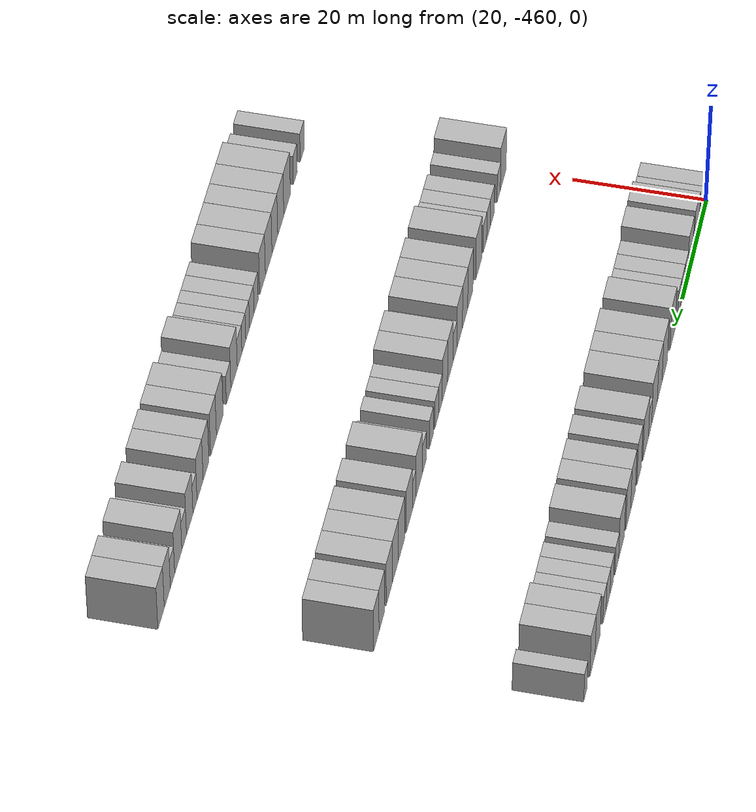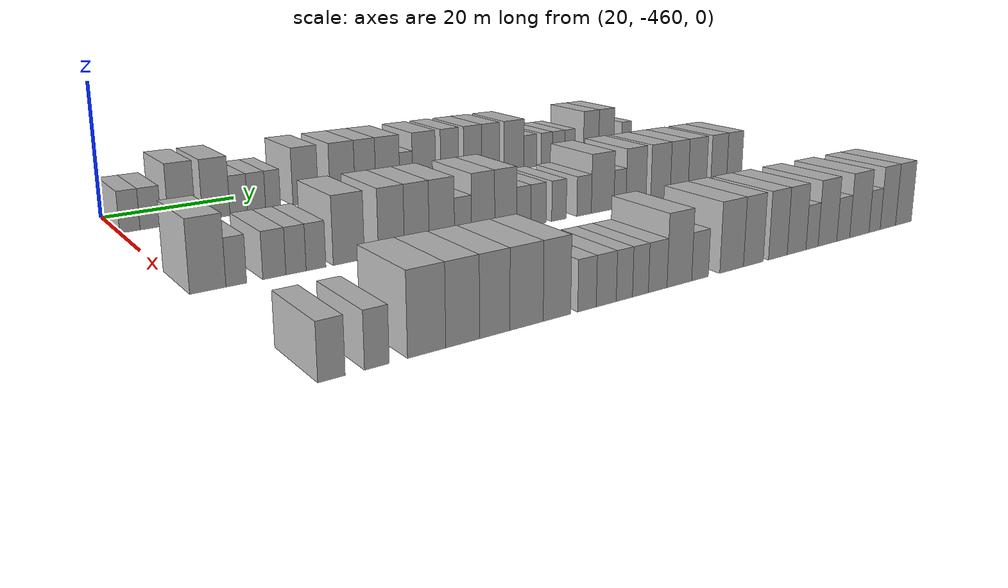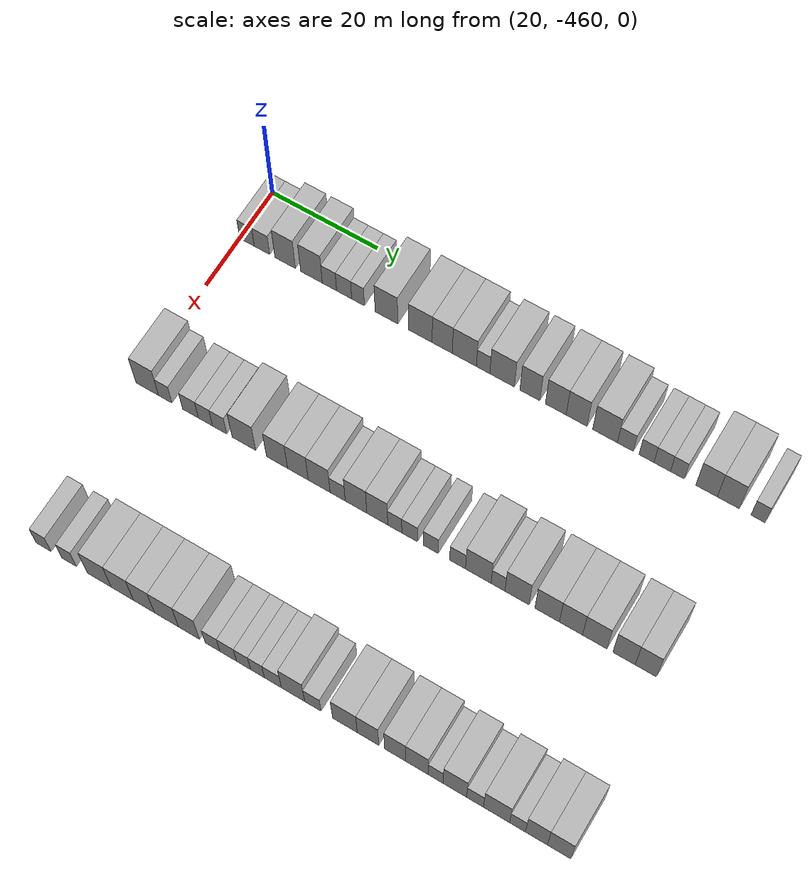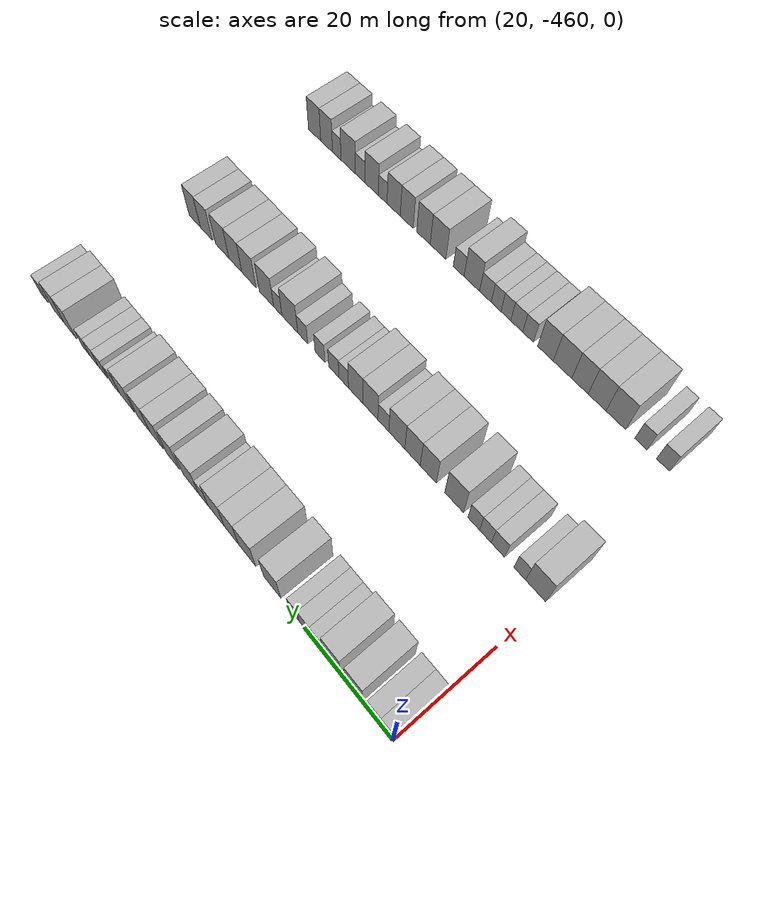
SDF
<sdf version="1.6">
 <world name="default">
  <model name="building_1">
   <static>1</static>
   <pose>25.0000 -458.6029 0 0.000000 0.000000 0.000000</pose>
   <link name="link">
    <pose>0 0 3.00 0 0 0</pose>
    <collision name="collision"><geometry><box><size>10.0000 2.7942 6.0000</size></box></geometry></collision>
    <visual name="visual">
     <cast_shadows>0</cast_shadows>
     <geometry><box><size>10.0000 2.7942 6.0000</size></box></geometry>
     <material>
      <script>
       <uri>model://HANNAS_wall/materials/scripts</uri>
       <uri>model://HANNAS_wall/materials/textures</uri>
       <name>vrc/HANNAS_wall</name>
      </script>
     </material>
    </visual>
   </link>
  </model>
  <model name="building_2">
   <static>1</static>
   <pose>25.0000 -455.7267 0 0.000000 0.000000 0.000000</pose>
   <link name="link">
    <pose>0 0 3.00 0 0 0</pose>
    <collision name="collision"><geometry><box><size>10.0000 2.9581 6.0000</size></box></geometry></collision>
    <visual name="visual">
     <cast_shadows>0</cast_shadows>
     <geometry><box><size>10.0000 2.9581 6.0000</size></box></geometry>
     <material>
      <script>
       <uri>model://HANNAS_wall/materials/scripts</uri>
       <uri>model://HANNAS_wall/materials/textures</uri>
       <name>vrc/HANNAS_wall</name>
      </script>
     </material>
    </visual>
   </link>
  </model>
  <model name="building_3">
   <static>1</static>
   <pose>25.0000 -451.2907 0 0.000000 0.000000 0.000000</pose>
   <link name="link">
    <pose>0 0 4.50 0 0 0</pose>
    <collision name="collision"><geometry><box><size>10.0000 3.9138 9.0000</size></box></geometry></collision>
    <visual name="visual">
     <cast_shadows>0</cast_shadows>
     <geometry><box><size>10.0000 3.9138 9.0000</size></box></geometry>
     <material>
      <script>
       <uri>model://HANNAS_wall/materials/scripts</uri>
       <uri>model://HANNAS_wall/materials/textures</uri>
       <name>vrc/HANNAS_wall</name>
      </script>
     </material>
    </visual>
   </link>
  </model>
  <model name="building_4">
   <static>1</static>
   <pose>25.0000 -446.2774 0 0.000000 0.000000 0.000000</pose>
   <link name="link">
    <pose>0 0 4.50 0 0 0</pose>
    <collision name="collision"><geometry><box><size>10.0000 4.1127 9.0000</size></box></geometry></collision>
    <visual name="visual">
     <cast_shadows>0</cast_shadows>
     <geometry><box><size>10.0000 4.1127 9.0000</size></box></geometry>
     <material>
      <script>
       <uri>model://HANNAS_wall/materials/scripts</uri>
       <uri>model://HANNAS_wall/materials/textures</uri>
       <name>vrc/HANNAS_wall</name>
      </script>
     </material>
    </visual>
   </link>
  </model>
  <model name="building_5">
   <static>1</static>
   <pose>25.0000 -442.8723 0 0.000000 0.000000 0.000000</pose>
   <link name="link">
    <pose>0 0 3.00 0 0 0</pose>
    <collision name="collision"><geometry><box><size>10.0000 2.6977 6.0000</size></box></geometry></collision>
    <visual name="visual">
     <cast_shadows>0</cast_shadows>
     <geometry><box><size>10.0000 2.6977 6.0000</size></box></geometry>
     <material>
      <script>
       <uri>model://HANNAS_wall/materials/scripts</uri>
       <uri>model://HANNAS_wall/materials/textures</uri>
       <name>vrc/HANNAS_wall</name>
      </script>
     </material>
    </visual>
   </link>
  </model>
  <model name="building_6">
   <static>1</static>
   <pose>25.0000 -440.1029 0 0.000000 0.000000 0.000000</pose>
   <link name="link">
    <pose>0 0 3.00 0 0 0</pose>
    <collision name="collision"><geometry><box><size>10.0000 2.8411 6.0000</size></box></geometry></collision>
    <visual name="visual">
     <cast_shadows>0</cast_shadows>
     <geometry><box><size>10.0000 2.8411 6.0000</size></box></geometry>
     <material>
      <script>
       <uri>model://HANNAS_wall/materials/scripts</uri>
       <uri>model://HANNAS_wall/materials/textures</uri>
       <name>vrc/HANNAS_wall</name>
      </script>
     </material>
    </visual>
   </link>
  </model>
  <model name="building_7">
   <static>1</static>
   <pose>25.0000 -437.4816 0 0.000000 0.000000 0.000000</pose>
   <link name="link">
    <pose>0 0 3.00 0 0 0</pose>
    <collision name="collision"><geometry><box><size>10.0000 2.4014 6.0000</size></box></geometry></collision>
    <visual name="visual">
     <cast_shadows>0</cast_shadows>
     <geometry><box><size>10.0000 2.4014 6.0000</size></box></geometry>
     <material>
      <script>
       <uri>model://HANNAS_wall/materials/scripts</uri>
       <uri>model://HANNAS_wall/materials/textures</uri>
       <name>vrc/HANNAS_wall</name>
      </script>
     </material>
    </visual>
   </link>
  </model>
  <model name="building_8">
   <static>1</static>
   <pose>25.0000 -432.1610 0 0.000000 0.000000 0.000000</pose>
   <link name="link">
    <pose>0 0 4.50 0 0 0</pose>
    <collision name="collision"><geometry><box><size>10.0000 4.2400 9.0000</size></box></geometry></collision>
    <visual name="visual">
     <cast_shadows>0</cast_shadows>
     <geometry><box><size>10.0000 4.2400 9.0000</size></box></geometry>
     <material>
      <script>
       <uri>model://HANNAS_wall/materials/scripts</uri>
       <uri>model://HANNAS_wall/materials/textures</uri>
       <name>vrc/HANNAS_wall</name>
      </script>
     </material>
    </visual>
   </link>
  </model>
  <model name="building_9">
   <static>1</static>
   <pose>25.0000 -425.8645 0 0.000000 0.000000 0.000000</pose>
   <link name="link">
    <pose>0 0 4.50 0 0 0</pose>
    <collision name="collision"><geometry><box><size>10.0000 4.3530 9.0000</size></box></geometry></collision>
    <visual name="visual">
     <cast_shadows>0</cast_shadows>
     <geometry><box><size>10.0000 4.3530 9.0000</size></box></geometry>
     <material>
      <script>
       <uri>model://HANNAS_wall/materials/scripts</uri>
       <uri>model://HANNAS_wall/materials/textures</uri>
       <name>vrc/HANNAS_wall</name>
      </script>
     </material>
    </visual>
   </link>
  </model>
  <model name="building_10">
   <static>1</static>
   <pose>25.0000 -421.8221 0 0.000000 0.000000 0.000000</pose>
   <link name="link">
    <pose>0 0 4.50 0 0 0</pose>
    <collision name="collision"><geometry><box><size>10.0000 3.7318 9.0000</size></box></geometry></collision>
    <visual name="visual">
     <cast_shadows>0</cast_shadows>
     <geometry><box><size>10.0000 3.7318 9.0000</size></box></geometry>
     <material>
      <script>
       <uri>model://HANNAS_wall/materials/scripts</uri>
       <uri>model://HANNAS_wall/materials/textures</uri>
       <name>vrc/HANNAS_wall</name>
      </script>
     </material>
    </visual>
   </link>
  </model>
  <model name="building_11">
   <static>1</static>
   <pose>25.0000 -417.7450 0 0.000000 0.000000 0.000000</pose>
   <link name="link">
    <pose>0 0 4.50 0 0 0</pose>
    <collision name="collision"><geometry><box><size>10.0000 4.4225 9.0000</size></box></geometry></collision>
    <visual name="visual">
     <cast_shadows>0</cast_shadows>
     <geometry><box><size>10.0000 4.4225 9.0000</size></box></geometry>
     <material>
      <script>
       <uri>model://HANNAS_wall/materials/scripts</uri>
       <uri>model://HANNAS_wall/materials/textures</uri>
       <name>vrc/HANNAS_wall</name>
      </script>
     </material>
    </visual>
   </link>
  </model>
  <model name="building_12">
   <static>1</static>
   <pose>25.0000 -414.3129 0 0.000000 0.000000 0.000000</pose>
   <link name="link">
    <pose>0 0 3.00 0 0 0</pose>
    <collision name="collision"><geometry><box><size>10.0000 2.4416 6.0000</size></box></geometry></collision>
    <visual name="visual">
     <cast_shadows>0</cast_shadows>
     <geometry><box><size>10.0000 2.4416 6.0000</size></box></geometry>
     <material>
      <script>
       <uri>model://HANNAS_wall/materials/scripts</uri>
       <uri>model://HANNAS_wall/materials/textures</uri>
       <name>vrc/HANNAS_wall</name>
      </script>
     </material>
    </visual>
   </link>
  </model>
  <model name="building_13">
   <static>1</static>
   <pose>25.0000 -410.8627 0 0.000000 0.000000 0.000000</pose>
   <link name="link">
    <pose>0 0 4.50 0 0 0</pose>
    <collision name="collision"><geometry><box><size>10.0000 4.4589 9.0000</size></box></geometry></collision>
    <visual name="visual">
     <cast_shadows>0</cast_shadows>
     <geometry><box><size>10.0000 4.4589 9.0000</size></box></geometry>
     <material>
      <script>
       <uri>model://HANNAS_wall/materials/scripts</uri>
       <uri>model://HANNAS_wall/materials/textures</uri>
       <name>vrc/HANNAS_wall</name>
      </script>
     </material>
    </visual>
   </link>
  </model>
  <model name="building_14">
   <static>1</static>
   <pose>25.0000 -405.8294 0 0.000000 0.000000 0.000000</pose>
   <link name="link">
    <pose>0 0 4.50 0 0 0</pose>
    <collision name="collision"><geometry><box><size>10.0000 3.6076 9.0000</size></box></geometry></collision>
    <visual name="visual">
     <cast_shadows>0</cast_shadows>
     <geometry><box><size>10.0000 3.6076 9.0000</size></box></geometry>
     <material>
      <script>
       <uri>model://HANNAS_wall/materials/scripts</uri>
       <uri>model://HANNAS_wall/materials/textures</uri>
       <name>vrc/HANNAS_wall</name>
      </script>
     </material>
    </visual>
   </link>
  </model>
  <model name="building_15">
   <static>1</static>
   <pose>25.0000 -401.1671 0 0.000000 0.000000 0.000000</pose>
   <link name="link">
    <pose>0 0 4.50 0 0 0</pose>
    <collision name="collision"><geometry><box><size>10.0000 3.7169 9.0000</size></box></geometry></collision>
    <visual name="visual">
     <cast_shadows>0</cast_shadows>
     <geometry><box><size>10.0000 3.7169 9.0000</size></box></geometry>
     <material>
      <script>
       <uri>model://HANNAS_wall/materials/scripts</uri>
       <uri>model://HANNAS_wall/materials/textures</uri>
       <name>vrc/HANNAS_wall</name>
      </script>
     </material>
    </visual>
   </link>
  </model>
  <model name="building_16">
   <static>1</static>
   <pose>25.0000 -397.4379 0 0.000000 0.000000 0.000000</pose>
   <link name="link">
    <pose>0 0 4.50 0 0 0</pose>
    <collision name="collision"><geometry><box><size>10.0000 3.7416 9.0000</size></box></geometry></collision>
    <visual name="visual">
     <cast_shadows>0</cast_shadows>
     <geometry><box><size>10.0000 3.7416 9.0000</size></box></geometry>
     <material>
      <script>
       <uri>model://HANNAS_wall/materials/scripts</uri>
       <uri>model://HANNAS_wall/materials/textures</uri>
       <name>vrc/HANNAS_wall</name>
      </script>
     </material>
    </visual>
   </link>
  </model>
  <model name="building_17">
   <static>1</static>
   <pose>25.0000 -392.3693 0 0.000000 0.000000 0.000000</pose>
   <link name="link">
    <pose>0 0 4.50 0 0 0</pose>
    <collision name="collision"><geometry><box><size>10.0000 4.3956 9.0000</size></box></geometry></collision>
    <visual name="visual">
     <cast_shadows>0</cast_shadows>
     <geometry><box><size>10.0000 4.3956 9.0000</size></box></geometry>
     <material>
      <script>
       <uri>model://HANNAS_wall/materials/scripts</uri>
       <uri>model://HANNAS_wall/materials/textures</uri>
       <name>vrc/HANNAS_wall</name>
      </script>
     </material>
    </visual>
   </link>
  </model>
  <model name="building_18">
   <static>1</static>
   <pose>25.0000 -388.7617 0 0.000000 0.000000 0.000000</pose>
   <link name="link">
    <pose>0 0 3.00 0 0 0</pose>
    <collision name="collision"><geometry><box><size>10.0000 2.8195 6.0000</size></box></geometry></collision>
    <visual name="visual">
     <cast_shadows>0</cast_shadows>
     <geometry><box><size>10.0000 2.8195 6.0000</size></box></geometry>
     <material>
      <script>
       <uri>model://HANNAS_wall/materials/scripts</uri>
       <uri>model://HANNAS_wall/materials/textures</uri>
       <name>vrc/HANNAS_wall</name>
      </script>
     </material>
    </visual>
   </link>
  </model>
  <model name="building_19">
   <static>1</static>
   <pose>25.0000 -385.0344 0 0.000000 0.000000 0.000000</pose>
   <link name="link">
    <pose>0 0 3.00 0 0 0</pose>
    <collision name="collision"><geometry><box><size>10.0000 2.6351 6.0000</size></box></geometry></collision>
    <visual name="visual">
     <cast_shadows>0</cast_shadows>
     <geometry><box><size>10.0000 2.6351 6.0000</size></box></geometry>
     <material>
      <script>
       <uri>model://HANNAS_wall/materials/scripts</uri>
       <uri>model://HANNAS_wall/materials/textures</uri>
       <name>vrc/HANNAS_wall</name>
      </script>
     </material>
    </visual>
   </link>
  </model>
  <model name="building_20">
   <static>1</static>
   <pose>25.0000 -382.2800 0 0.000000 0.000000 0.000000</pose>
   <link name="link">
    <pose>0 0 3.00 0 0 0</pose>
    <collision name="collision"><geometry><box><size>10.0000 2.8738 6.0000</size></box></geometry></collision>
    <visual name="visual">
     <cast_shadows>0</cast_shadows>
     <geometry><box><size>10.0000 2.8738 6.0000</size></box></geometry>
     <material>
      <script>
       <uri>model://HANNAS_wall/materials/scripts</uri>
       <uri>model://HANNAS_wall/materials/textures</uri>
       <name>vrc/HANNAS_wall</name>
      </script>
     </material>
    </visual>
   </link>
  </model>
  <model name="building_21">
   <static>1</static>
   <pose>25.0000 -379.6237 0 0.000000 0.000000 0.000000</pose>
   <link name="link">
    <pose>0 0 3.00 0 0 0</pose>
    <collision name="collision"><geometry><box><size>10.0000 2.4389 6.0000</size></box></geometry></collision>
    <visual name="visual">
     <cast_shadows>0</cast_shadows>
     <geometry><box><size>10.0000 2.4389 6.0000</size></box></geometry>
     <material>
      <script>
       <uri>model://HANNAS_wall/materials/scripts</uri>
       <uri>model://HANNAS_wall/materials/textures</uri>
       <name>vrc/HANNAS_wall</name>
      </script>
     </material>
    </visual>
   </link>
  </model>
  <model name="building_22">
   <static>1</static>
   <pose>25.0000 -374.5385 0 0.000000 0.000000 0.000000</pose>
   <link name="link">
    <pose>0 0 4.50 0 0 0</pose>
    <collision name="collision"><geometry><box><size>10.0000 3.7314 9.0000</size></box></geometry></collision>
    <visual name="visual">
     <cast_shadows>0</cast_shadows>
     <geometry><box><size>10.0000 3.7314 9.0000</size></box></geometry>
     <material>
      <script>
       <uri>model://HANNAS_wall/materials/scripts</uri>
       <uri>model://HANNAS_wall/materials/textures</uri>
       <name>vrc/HANNAS_wall</name>
      </script>
     </material>
    </visual>
   </link>
  </model>
  <model name="building_23">
   <static>1</static>
   <pose>25.0000 -370.7666 0 0.000000 0.000000 0.000000</pose>
   <link name="link">
    <pose>0 0 4.50 0 0 0</pose>
    <collision name="collision"><geometry><box><size>10.0000 3.8125 9.0000</size></box></geometry></collision>
    <visual name="visual">
     <cast_shadows>0</cast_shadows>
     <geometry><box><size>10.0000 3.8125 9.0000</size></box></geometry>
     <material>
      <script>
       <uri>model://HANNAS_wall/materials/scripts</uri>
       <uri>model://HANNAS_wall/materials/textures</uri>
       <name>vrc/HANNAS_wall</name>
      </script>
     </material>
    </visual>
   </link>
  </model>
  <model name="building_24">
   <static>1</static>
   <pose>25.0000 -365.6417 0 0.000000 0.000000 0.000000</pose>
   <link name="link">
    <pose>0 0 3.00 0 0 0</pose>
    <collision name="collision"><geometry><box><size>10.0000 2.4372 6.0000</size></box></geometry></collision>
    <visual name="visual">
     <cast_shadows>0</cast_shadows>
     <geometry><box><size>10.0000 2.4372 6.0000</size></box></geometry>
     <material>
      <script>
       <uri>model://HANNAS_wall/materials/scripts</uri>
       <uri>model://HANNAS_wall/materials/textures</uri>
       <name>vrc/HANNAS_wall</name>
      </script>
     </material>
    </visual>
   </link>
  </model>
  <model name="building_236">
   <static>1</static>
   <pose>55.0000 -457.8594 0 0.000000 0.000000 0.000000</pose>
   <link name="link">
    <pose>0 0 4.50 0 0 0</pose>
    <collision name="collision"><geometry><box><size>10.0000 4.2812 9.0000</size></box></geometry></collision>
    <visual name="visual">
     <cast_shadows>0</cast_shadows>
     <geometry><box><size>10.0000 4.2812 9.0000</size></box></geometry>
     <material>
      <script>
       <uri>model://HANNAS_wall/materials/scripts</uri>
       <uri>model://HANNAS_wall/materials/textures</uri>
       <name>vrc/HANNAS_wall</name>
      </script>
     </material>
    </visual>
   </link>
  </model>
  <model name="building_237">
   <static>1</static>
   <pose>55.0000 -454.4589 0 0.000000 0.000000 0.000000</pose>
   <link name="link">
    <pose>0 0 3.00 0 0 0</pose>
    <collision name="collision"><geometry><box><size>10.0000 2.5199 6.0000</size></box></geometry></collision>
    <visual name="visual">
     <cast_shadows>0</cast_shadows>
     <geometry><box><size>10.0000 2.5199 6.0000</size></box></geometry>
     <material>
      <script>
       <uri>model://HANNAS_wall/materials/scripts</uri>
       <uri>model://HANNAS_wall/materials/textures</uri>
       <name>vrc/HANNAS_wall</name>
      </script>
     </material>
    </visual>
   </link>
  </model>
  <model name="building_238">
   <static>1</static>
   <pose>55.0000 -449.7266 0 0.000000 0.000000 0.000000</pose>
   <link name="link">
    <pose>0 0 3.00 0 0 0</pose>
    <collision name="collision"><geometry><box><size>10.0000 2.9447 6.0000</size></box></geometry></collision>
    <visual name="visual">
     <cast_shadows>0</cast_shadows>
     <geometry><box><size>10.0000 2.9447 6.0000</size></box></geometry>
     <material>
      <script>
       <uri>model://HANNAS_wall/materials/scripts</uri>
       <uri>model://HANNAS_wall/materials/textures</uri>
       <name>vrc/HANNAS_wall</name>
      </script>
     </material>
    </visual>
   </link>
  </model>
  <model name="building_239">
   <static>1</static>
   <pose>55.0000 -446.9362 0 0.000000 0.000000 0.000000</pose>
   <link name="link">
    <pose>0 0 3.00 0 0 0</pose>
    <collision name="collision"><geometry><box><size>10.0000 2.6360 6.0000</size></box></geometry></collision>
    <visual name="visual">
     <cast_shadows>0</cast_shadows>
     <geometry><box><size>10.0000 2.6360 6.0000</size></box></geometry>
     <material>
      <script>
       <uri>model://HANNAS_wall/materials/scripts</uri>
       <uri>model://HANNAS_wall/materials/textures</uri>
       <name>vrc/HANNAS_wall</name>
      </script>
     </material>
    </visual>
   </link>
  </model>
  <model name="building_240">
   <static>1</static>
   <pose>55.0000 -444.2965 0 0.000000 0.000000 0.000000</pose>
   <link name="link">
    <pose>0 0 3.00 0 0 0</pose>
    <collision name="collision"><geometry><box><size>10.0000 2.6434 6.0000</size></box></geometry></collision>
    <visual name="visual">
     <cast_shadows>0</cast_shadows>
     <geometry><box><size>10.0000 2.6434 6.0000</size></box></geometry>
     <material>
      <script>
       <uri>model://HANNAS_wall/materials/scripts</uri>
       <uri>model://HANNAS_wall/materials/textures</uri>
       <name>vrc/HANNAS_wall</name>
      </script>
     </material>
    </visual>
   </link>
  </model>
  <model name="building_241">
   <static>1</static>
   <pose>55.0000 -439.7972 0 0.000000 0.000000 0.000000</pose>
   <link name="link">
    <pose>0 0 4.50 0 0 0</pose>
    <collision name="collision"><geometry><box><size>10.0000 4.3552 9.0000</size></box></geometry></collision>
    <visual name="visual">
     <cast_shadows>0</cast_shadows>
     <geometry><box><size>10.0000 4.3552 9.0000</size></box></geometry>
     <material>
      <script>
       <uri>model://HANNAS_wall/materials/scripts</uri>
       <uri>model://HANNAS_wall/materials/textures</uri>
       <name>vrc/HANNAS_wall</name>
      </script>
     </material>
    </visual>
   </link>
  </model>
  <model name="building_242">
   <static>1</static>
   <pose>55.0000 -433.6970 0 0.000000 0.000000 0.000000</pose>
   <link name="link">
    <pose>0 0 4.50 0 0 0</pose>
    <collision name="collision"><geometry><box><size>10.0000 3.8451 9.0000</size></box></geometry></collision>
    <visual name="visual">
     <cast_shadows>0</cast_shadows>
     <geometry><box><size>10.0000 3.8451 9.0000</size></box></geometry>
     <material>
      <script>
       <uri>model://HANNAS_wall/materials/scripts</uri>
       <uri>model://HANNAS_wall/materials/textures</uri>
       <name>vrc/HANNAS_wall</name>
      </script>
     </material>
    </visual>
   </link>
  </model>
  <model name="building_243">
   <static>1</static>
   <pose>55.0000 -429.8878 0 0.000000 0.000000 0.000000</pose>
   <link name="link">
    <pose>0 0 4.50 0 0 0</pose>
    <collision name="collision"><geometry><box><size>10.0000 3.7734 9.0000</size></box></geometry></collision>
    <visual name="visual">
     <cast_shadows>0</cast_shadows>
     <geometry><box><size>10.0000 3.7734 9.0000</size></box></geometry>
     <material>
      <script>
       <uri>model://HANNAS_wall/materials/scripts</uri>
       <uri>model://HANNAS_wall/materials/textures</uri>
       <name>vrc/HANNAS_wall</name>
      </script>
     </material>
    </visual>
   </link>
  </model>
  <model name="building_244">
   <static>1</static>
   <pose>55.0000 -426.0127 0 0.000000 0.000000 0.000000</pose>
   <link name="link">
    <pose>0 0 4.50 0 0 0</pose>
    <collision name="collision"><geometry><box><size>10.0000 3.9769 9.0000</size></box></geometry></collision>
    <visual name="visual">
     <cast_shadows>0</cast_shadows>
     <geometry><box><size>10.0000 3.9769 9.0000</size></box></geometry>
     <material>
      <script>
       <uri>model://HANNAS_wall/materials/scripts</uri>
       <uri>model://HANNAS_wall/materials/textures</uri>
       <name>vrc/HANNAS_wall</name>
      </script>
     </material>
    </visual>
   </link>
  </model>
  <model name="building_245">
   <static>1</static>
   <pose>55.0000 -422.6537 0 0.000000 0.000000 0.000000</pose>
   <link name="link">
    <pose>0 0 3.00 0 0 0</pose>
    <collision name="collision"><geometry><box><size>10.0000 2.7411 6.0000</size></box></geometry></collision>
    <visual name="visual">
     <cast_shadows>0</cast_shadows>
     <geometry><box><size>10.0000 2.7411 6.0000</size></box></geometry>
     <material>
      <script>
       <uri>model://HANNAS_wall/materials/scripts</uri>
       <uri>model://HANNAS_wall/materials/textures</uri>
       <name>vrc/HANNAS_wall</name>
      </script>
     </material>
    </visual>
   </link>
  </model>
  <model name="building_246">
   <static>1</static>
   <pose>55.0000 -419.3469 0 0.000000 0.000000 0.000000</pose>
   <link name="link">
    <pose>0 0 4.50 0 0 0</pose>
    <collision name="collision"><geometry><box><size>10.0000 3.8724 9.0000</size></box></geometry></collision>
    <visual name="visual">
     <cast_shadows>0</cast_shadows>
     <geometry><box><size>10.0000 3.8724 9.0000</size></box></geometry>
     <material>
      <script>
       <uri>model://HANNAS_wall/materials/scripts</uri>
       <uri>model://HANNAS_wall/materials/textures</uri>
       <name>vrc/HANNAS_wall</name>
      </script>
     </material>
    </visual>
   </link>
  </model>
  <model name="building_247">
   <static>1</static>
   <pose>55.0000 -415.5356 0 0.000000 0.000000 0.000000</pose>
   <link name="link">
    <pose>0 0 4.50 0 0 0</pose>
    <collision name="collision"><geometry><box><size>10.0000 3.7503 9.0000</size></box></geometry></collision>
    <visual name="visual">
     <cast_shadows>0</cast_shadows>
     <geometry><box><size>10.0000 3.7503 9.0000</size></box></geometry>
     <material>
      <script>
       <uri>model://HANNAS_wall/materials/scripts</uri>
       <uri>model://HANNAS_wall/materials/textures</uri>
       <name>vrc/HANNAS_wall</name>
      </script>
     </material>
    </visual>
   </link>
  </model>
  <model name="building_248">
   <static>1</static>
   <pose>55.0000 -412.4036 0 0.000000 0.000000 0.000000</pose>
   <link name="link">
    <pose>0 0 3.00 0 0 0</pose>
    <collision name="collision"><geometry><box><size>10.0000 2.5137 6.0000</size></box></geometry></collision>
    <visual name="visual">
     <cast_shadows>0</cast_shadows>
     <geometry><box><size>10.0000 2.5137 6.0000</size></box></geometry>
     <material>
      <script>
       <uri>model://HANNAS_wall/materials/scripts</uri>
       <uri>model://HANNAS_wall/materials/textures</uri>
       <name>vrc/HANNAS_wall</name>
      </script>
     </material>
    </visual>
   </link>
  </model>
  <model name="building_249">
   <static>1</static>
   <pose>55.0000 -409.7618 0 0.000000 0.000000 0.000000</pose>
   <link name="link">
    <pose>0 0 3.00 0 0 0</pose>
    <collision name="collision"><geometry><box><size>10.0000 2.7698 6.0000</size></box></geometry></collision>
    <visual name="visual">
     <cast_shadows>0</cast_shadows>
     <geometry><box><size>10.0000 2.7698 6.0000</size></box></geometry>
     <material>
      <script>
       <uri>model://HANNAS_wall/materials/scripts</uri>
       <uri>model://HANNAS_wall/materials/textures</uri>
       <name>vrc/HANNAS_wall</name>
      </script>
     </material>
    </visual>
   </link>
  </model>
  <model name="building_250">
   <static>1</static>
   <pose>55.0000 -406.0267 0 0.000000 0.000000 0.000000</pose>
   <link name="link">
    <pose>0 0 3.00 0 0 0</pose>
    <collision name="collision"><geometry><box><size>10.0000 2.7005 6.0000</size></box></geometry></collision>
    <visual name="visual">
     <cast_shadows>0</cast_shadows>
     <geometry><box><size>10.0000 2.7005 6.0000</size></box></geometry>
     <material>
      <script>
       <uri>model://HANNAS_wall/materials/scripts</uri>
       <uri>model://HANNAS_wall/materials/textures</uri>
       <name>vrc/HANNAS_wall</name>
      </script>
     </material>
    </visual>
   </link>
  </model>
  <model name="building_251">
   <static>1</static>
   <pose>55.0000 -401.2823 0 0.000000 0.000000 0.000000</pose>
   <link name="link">
    <pose>0 0 3.00 0 0 0</pose>
    <collision name="collision"><geometry><box><size>10.0000 2.7881 6.0000</size></box></geometry></collision>
    <visual name="visual">
     <cast_shadows>0</cast_shadows>
     <geometry><box><size>10.0000 2.7881 6.0000</size></box></geometry>
     <material>
      <script>
       <uri>model://HANNAS_wall/materials/scripts</uri>
       <uri>model://HANNAS_wall/materials/textures</uri>
       <name>vrc/HANNAS_wall</name>
      </script>
     </material>
    </visual>
   </link>
  </model>
  <model name="building_252">
   <static>1</static>
   <pose>55.0000 -397.6510 0 0.000000 0.000000 0.000000</pose>
   <link name="link">
    <pose>0 0 4.50 0 0 0</pose>
    <collision name="collision"><geometry><box><size>10.0000 4.4745 9.0000</size></box></geometry></collision>
    <visual name="visual">
     <cast_shadows>0</cast_shadows>
     <geometry><box><size>10.0000 4.4745 9.0000</size></box></geometry>
     <material>
      <script>
       <uri>model://HANNAS_wall/materials/scripts</uri>
       <uri>model://HANNAS_wall/materials/textures</uri>
       <name>vrc/HANNAS_wall</name>
      </script>
     </material>
    </visual>
   </link>
  </model>
  <model name="building_253">
   <static>1</static>
   <pose>55.0000 -394.2056 0 0.000000 0.000000 0.000000</pose>
   <link name="link">
    <pose>0 0 3.00 0 0 0</pose>
    <collision name="collision"><geometry><box><size>10.0000 2.4164 6.0000</size></box></geometry></collision>
    <visual name="visual">
     <cast_shadows>0</cast_shadows>
     <geometry><box><size>10.0000 2.4164 6.0000</size></box></geometry>
     <material>
      <script>
       <uri>model://HANNAS_wall/materials/scripts</uri>
       <uri>model://HANNAS_wall/materials/textures</uri>
       <name>vrc/HANNAS_wall</name>
      </script>
     </material>
    </visual>
   </link>
  </model>
  <model name="building_254">
   <static>1</static>
   <pose>55.0000 -390.9035 0 0.000000 0.000000 0.000000</pose>
   <link name="link">
    <pose>0 0 4.50 0 0 0</pose>
    <collision name="collision"><geometry><box><size>10.0000 4.1877 9.0000</size></box></geometry></collision>
    <visual name="visual">
     <cast_shadows>0</cast_shadows>
     <geometry><box><size>10.0000 4.1877 9.0000</size></box></geometry>
     <material>
      <script>
       <uri>model://HANNAS_wall/materials/scripts</uri>
       <uri>model://HANNAS_wall/materials/textures</uri>
       <name>vrc/HANNAS_wall</name>
      </script>
     </material>
    </visual>
   </link>
  </model>
  <model name="building_255">
   <static>1</static>
   <pose>55.0000 -385.6981 0 0.000000 0.000000 0.000000</pose>
   <link name="link">
    <pose>0 0 4.50 0 0 0</pose>
    <collision name="collision"><geometry><box><size>10.0000 4.2230 9.0000</size></box></geometry></collision>
    <visual name="visual">
     <cast_shadows>0</cast_shadows>
     <geometry><box><size>10.0000 4.2230 9.0000</size></box></geometry>
     <material>
      <script>
       <uri>model://HANNAS_wall/materials/scripts</uri>
       <uri>model://HANNAS_wall/materials/textures</uri>
       <name>vrc/HANNAS_wall</name>
      </script>
     </material>
    </visual>
   </link>
  </model>
  <model name="building_256">
   <static>1</static>
   <pose>55.0000 -381.5985 0 0.000000 0.000000 0.000000</pose>
   <link name="link">
    <pose>0 0 4.50 0 0 0</pose>
    <collision name="collision"><geometry><box><size>10.0000 3.9763 9.0000</size></box></geometry></collision>
    <visual name="visual">
     <cast_shadows>0</cast_shadows>
     <geometry><box><size>10.0000 3.9763 9.0000</size></box></geometry>
     <material>
      <script>
       <uri>model://HANNAS_wall/materials/scripts</uri>
       <uri>model://HANNAS_wall/materials/textures</uri>
       <name>vrc/HANNAS_wall</name>
      </script>
     </material>
    </visual>
   </link>
  </model>
  <model name="building_257">
   <static>1</static>
   <pose>55.0000 -377.5287 0 0.000000 0.000000 0.000000</pose>
   <link name="link">
    <pose>0 0 4.50 0 0 0</pose>
    <collision name="collision"><geometry><box><size>10.0000 4.1632 9.0000</size></box></geometry></collision>
    <visual name="visual">
     <cast_shadows>0</cast_shadows>
     <geometry><box><size>10.0000 4.1632 9.0000</size></box></geometry>
     <material>
      <script>
       <uri>model://HANNAS_wall/materials/scripts</uri>
       <uri>model://HANNAS_wall/materials/textures</uri>
       <name>vrc/HANNAS_wall</name>
      </script>
     </material>
    </visual>
   </link>
  </model>
  <model name="building_258">
   <static>1</static>
   <pose>55.0000 -372.5630 0 0.000000 0.000000 0.000000</pose>
   <link name="link">
    <pose>0 0 4.50 0 0 0</pose>
    <collision name="collision"><geometry><box><size>10.0000 3.7682 9.0000</size></box></geometry></collision>
    <visual name="visual">
     <cast_shadows>0</cast_shadows>
     <geometry><box><size>10.0000 3.7682 9.0000</size></box></geometry>
     <material>
      <script>
       <uri>model://HANNAS_wall/materials/scripts</uri>
       <uri>model://HANNAS_wall/materials/textures</uri>
       <name>vrc/HANNAS_wall</name>
      </script>
     </material>
    </visual>
   </link>
  </model>
  <model name="building_259">
   <static>1</static>
   <pose>55.0000 -368.8712 0 0.000000 0.000000 0.000000</pose>
   <link name="link">
    <pose>0 0 4.50 0 0 0</pose>
    <collision name="collision"><geometry><box><size>10.0000 3.6153 9.0000</size></box></geometry></collision>
    <visual name="visual">
     <cast_shadows>0</cast_shadows>
     <geometry><box><size>10.0000 3.6153 9.0000</size></box></geometry>
     <material>
      <script>
       <uri>model://HANNAS_wall/materials/scripts</uri>
       <uri>model://HANNAS_wall/materials/textures</uri>
       <name>vrc/HANNAS_wall</name>
      </script>
     </material>
    </visual>
   </link>
  </model>
  <model name="building_463">
   <static>1</static>
   <pose>85.0000 -456.6104 0 0.000000 0.000000 0.000000</pose>
   <link name="link">
    <pose>0 0 3.00 0 0 0</pose>
    <collision name="collision"><geometry><box><size>10.0000 2.7792 6.0000</size></box></geometry></collision>
    <visual name="visual">
     <cast_shadows>0</cast_shadows>
     <geometry><box><size>10.0000 2.7792 6.0000</size></box></geometry>
     <material>
      <script>
       <uri>model://HANNAS_wall/materials/scripts</uri>
       <uri>model://HANNAS_wall/materials/textures</uri>
       <name>vrc/HANNAS_wall</name>
      </script>
     </material>
    </visual>
   </link>
  </model>
  <model name="building_464">
   <static>1</static>
   <pose>85.0000 -451.8976 0 0.000000 0.000000 0.000000</pose>
   <link name="link">
    <pose>0 0 3.00 0 0 0</pose>
    <collision name="collision"><geometry><box><size>10.0000 2.6464 6.0000</size></box></geometry></collision>
    <visual name="visual">
     <cast_shadows>0</cast_shadows>
     <geometry><box><size>10.0000 2.6464 6.0000</size></box></geometry>
     <material>
      <script>
       <uri>model://HANNAS_wall/materials/scripts</uri>
       <uri>model://HANNAS_wall/materials/textures</uri>
       <name>vrc/HANNAS_wall</name>
      </script>
     </material>
    </visual>
   </link>
  </model>
  <model name="building_465">
   <static>1</static>
   <pose>85.0000 -446.3875 0 0.000000 0.000000 0.000000</pose>
   <link name="link">
    <pose>0 0 4.50 0 0 0</pose>
    <collision name="collision"><geometry><box><size>10.0000 4.3738 9.0000</size></box></geometry></collision>
    <visual name="visual">
     <cast_shadows>0</cast_shadows>
     <geometry><box><size>10.0000 4.3738 9.0000</size></box></geometry>
     <material>
      <script>
       <uri>model://HANNAS_wall/materials/scripts</uri>
       <uri>model://HANNAS_wall/materials/textures</uri>
       <name>vrc/HANNAS_wall</name>
      </script>
     </material>
    </visual>
   </link>
  </model>
  <model name="building_466">
   <static>1</static>
   <pose>85.0000 -442.1741 0 0.000000 0.000000 0.000000</pose>
   <link name="link">
    <pose>0 0 4.50 0 0 0</pose>
    <collision name="collision"><geometry><box><size>10.0000 4.0529 9.0000</size></box></geometry></collision>
    <visual name="visual">
     <cast_shadows>0</cast_shadows>
     <geometry><box><size>10.0000 4.0529 9.0000</size></box></geometry>
     <material>
      <script>
       <uri>model://HANNAS_wall/materials/scripts</uri>
       <uri>model://HANNAS_wall/materials/textures</uri>
       <name>vrc/HANNAS_wall</name>
      </script>
     </material>
    </visual>
   </link>
  </model>
  <model name="building_467">
   <static>1</static>
   <pose>85.0000 -438.2512 0 0.000000 0.000000 0.000000</pose>
   <link name="link">
    <pose>0 0 4.50 0 0 0</pose>
    <collision name="collision"><geometry><box><size>10.0000 3.7929 9.0000</size></box></geometry></collision>
    <visual name="visual">
     <cast_shadows>0</cast_shadows>
     <geometry><box><size>10.0000 3.7929 9.0000</size></box></geometry>
     <material>
      <script>
       <uri>model://HANNAS_wall/materials/scripts</uri>
       <uri>model://HANNAS_wall/materials/textures</uri>
       <name>vrc/HANNAS_wall</name>
      </script>
     </material>
    </visual>
   </link>
  </model>
  <model name="building_468">
   <static>1</static>
   <pose>85.0000 -434.1782 0 0.000000 0.000000 0.000000</pose>
   <link name="link">
    <pose>0 0 4.50 0 0 0</pose>
    <collision name="collision"><geometry><box><size>10.0000 4.3530 9.0000</size></box></geometry></collision>
    <visual name="visual">
     <cast_shadows>0</cast_shadows>
     <geometry><box><size>10.0000 4.3530 9.0000</size></box></geometry>
     <material>
      <script>
       <uri>model://HANNAS_wall/materials/scripts</uri>
       <uri>model://HANNAS_wall/materials/textures</uri>
       <name>vrc/HANNAS_wall</name>
      </script>
     </material>
    </visual>
   </link>
  </model>
  <model name="building_469">
   <static>1</static>
   <pose>85.0000 -430.1309 0 0.000000 0.000000 0.000000</pose>
   <link name="link">
    <pose>0 0 4.50 0 0 0</pose>
    <collision name="collision"><geometry><box><size>10.0000 3.7417 9.0000</size></box></geometry></collision>
    <visual name="visual">
     <cast_shadows>0</cast_shadows>
     <geometry><box><size>10.0000 3.7417 9.0000</size></box></geometry>
     <material>
      <script>
       <uri>model://HANNAS_wall/materials/scripts</uri>
       <uri>model://HANNAS_wall/materials/textures</uri>
       <name>vrc/HANNAS_wall</name>
      </script>
     </material>
    </visual>
   </link>
  </model>
  <model name="building_470">
   <static>1</static>
   <pose>85.0000 -425.9359 0 0.000000 0.000000 0.000000</pose>
   <link name="link">
    <pose>0 0 3.00 0 0 0</pose>
    <collision name="collision"><geometry><box><size>10.0000 2.6481 6.0000</size></box></geometry></collision>
    <visual name="visual">
     <cast_shadows>0</cast_shadows>
     <geometry><box><size>10.0000 2.6481 6.0000</size></box></geometry>
     <material>
      <script>
       <uri>model://HANNAS_wall/materials/scripts</uri>
       <uri>model://HANNAS_wall/materials/textures</uri>
       <name>vrc/HANNAS_wall</name>
      </script>
     </material>
    </visual>
   </link>
  </model>
  <model name="building_471">
   <static>1</static>
   <pose>85.0000 -423.1397 0 0.000000 0.000000 0.000000</pose>
   <link name="link">
    <pose>0 0 3.00 0 0 0</pose>
    <collision name="collision"><geometry><box><size>10.0000 2.9443 6.0000</size></box></geometry></collision>
    <visual name="visual">
     <cast_shadows>0</cast_shadows>
     <geometry><box><size>10.0000 2.9443 6.0000</size></box></geometry>
     <material>
      <script>
       <uri>model://HANNAS_wall/materials/scripts</uri>
       <uri>model://HANNAS_wall/materials/textures</uri>
       <name>vrc/HANNAS_wall</name>
      </script>
     </material>
    </visual>
   </link>
  </model>
  <model name="building_472">
   <static>1</static>
   <pose>85.0000 -420.4420 0 0.000000 0.000000 0.000000</pose>
   <link name="link">
    <pose>0 0 3.00 0 0 0</pose>
    <collision name="collision"><geometry><box><size>10.0000 2.4512 6.0000</size></box></geometry></collision>
    <visual name="visual">
     <cast_shadows>0</cast_shadows>
     <geometry><box><size>10.0000 2.4512 6.0000</size></box></geometry>
     <material>
      <script>
       <uri>model://HANNAS_wall/materials/scripts</uri>
       <uri>model://HANNAS_wall/materials/textures</uri>
       <name>vrc/HANNAS_wall</name>
      </script>
     </material>
    </visual>
   </link>
  </model>
  <model name="building_473">
   <static>1</static>
   <pose>85.0000 -417.9831 0 0.000000 0.000000 0.000000</pose>
   <link name="link">
    <pose>0 0 3.00 0 0 0</pose>
    <collision name="collision"><geometry><box><size>10.0000 2.4665 6.0000</size></box></geometry></collision>
    <visual name="visual">
     <cast_shadows>0</cast_shadows>
     <geometry><box><size>10.0000 2.4665 6.0000</size></box></geometry>
     <material>
      <script>
       <uri>model://HANNAS_wall/materials/scripts</uri>
       <uri>model://HANNAS_wall/materials/textures</uri>
       <name>vrc/HANNAS_wall</name>
      </script>
     </material>
    </visual>
   </link>
  </model>
  <model name="building_474">
   <static>1</static>
   <pose>85.0000 -415.2634 0 0.000000 0.000000 0.000000</pose>
   <link name="link">
    <pose>0 0 3.00 0 0 0</pose>
    <collision name="collision"><geometry><box><size>10.0000 2.9729 6.0000</size></box></geometry></collision>
    <visual name="visual">
     <cast_shadows>0</cast_shadows>
     <geometry><box><size>10.0000 2.9729 6.0000</size></box></geometry>
     <material>
      <script>
       <uri>model://HANNAS_wall/materials/scripts</uri>
       <uri>model://HANNAS_wall/materials/textures</uri>
       <name>vrc/HANNAS_wall</name>
      </script>
     </material>
    </visual>
   </link>
  </model>
  <model name="building_475">
   <static>1</static>
   <pose>85.0000 -411.7430 0 0.000000 0.000000 0.000000</pose>
   <link name="link">
    <pose>0 0 4.50 0 0 0</pose>
    <collision name="collision"><geometry><box><size>10.0000 4.0680 9.0000</size></box></geometry></collision>
    <visual name="visual">
     <cast_shadows>0</cast_shadows>
     <geometry><box><size>10.0000 4.0680 9.0000</size></box></geometry>
     <material>
      <script>
       <uri>model://HANNAS_wall/materials/scripts</uri>
       <uri>model://HANNAS_wall/materials/textures</uri>
       <name>vrc/HANNAS_wall</name>
      </script>
     </material>
    </visual>
   </link>
  </model>
  <model name="building_476">
   <static>1</static>
   <pose>85.0000 -408.2896 0 0.000000 0.000000 0.000000</pose>
   <link name="link">
    <pose>0 0 3.00 0 0 0</pose>
    <collision name="collision"><geometry><box><size>10.0000 2.8389 6.0000</size></box></geometry></collision>
    <visual name="visual">
     <cast_shadows>0</cast_shadows>
     <geometry><box><size>10.0000 2.8389 6.0000</size></box></geometry>
     <material>
      <script>
       <uri>model://HANNAS_wall/materials/scripts</uri>
       <uri>model://HANNAS_wall/materials/textures</uri>
       <name>vrc/HANNAS_wall</name>
      </script>
     </material>
    </visual>
   </link>
  </model>
  <model name="building_477">
   <static>1</static>
   <pose>85.0000 -402.7441 0 0.000000 0.000000 0.000000</pose>
   <link name="link">
    <pose>0 0 4.50 0 0 0</pose>
    <collision name="collision"><geometry><box><size>10.0000 4.2521 9.0000</size></box></geometry></collision>
    <visual name="visual">
     <cast_shadows>0</cast_shadows>
     <geometry><box><size>10.0000 4.2521 9.0000</size></box></geometry>
     <material>
      <script>
       <uri>model://HANNAS_wall/materials/scripts</uri>
       <uri>model://HANNAS_wall/materials/textures</uri>
       <name>vrc/HANNAS_wall</name>
      </script>
     </material>
    </visual>
   </link>
  </model>
  <model name="building_478">
   <static>1</static>
   <pose>85.0000 -398.7736 0 0.000000 0.000000 0.000000</pose>
   <link name="link">
    <pose>0 0 4.50 0 0 0</pose>
    <collision name="collision"><geometry><box><size>10.0000 3.6887 9.0000</size></box></geometry></collision>
    <visual name="visual">
     <cast_shadows>0</cast_shadows>
     <geometry><box><size>10.0000 3.6887 9.0000</size></box></geometry>
     <material>
      <script>
       <uri>model://HANNAS_wall/materials/scripts</uri>
       <uri>model://HANNAS_wall/materials/textures</uri>
       <name>vrc/HANNAS_wall</name>
      </script>
     </material>
    </visual>
   </link>
  </model>
  <model name="building_479">
   <static>1</static>
   <pose>85.0000 -394.1178 0 0.000000 0.000000 0.000000</pose>
   <link name="link">
    <pose>0 0 4.50 0 0 0</pose>
    <collision name="collision"><geometry><box><size>10.0000 3.6229 9.0000</size></box></geometry></collision>
    <visual name="visual">
     <cast_shadows>0</cast_shadows>
     <geometry><box><size>10.0000 3.6229 9.0000</size></box></geometry>
     <material>
      <script>
       <uri>model://HANNAS_wall/materials/scripts</uri>
       <uri>model://HANNAS_wall/materials/textures</uri>
       <name>vrc/HANNAS_wall</name>
      </script>
     </material>
    </visual>
   </link>
  </model>
  <model name="building_480">
   <static>1</static>
   <pose>85.0000 -390.4104 0 0.000000 0.000000 0.000000</pose>
   <link name="link">
    <pose>0 0 4.50 0 0 0</pose>
    <collision name="collision"><geometry><box><size>10.0000 3.7918 9.0000</size></box></geometry></collision>
    <visual name="visual">
     <cast_shadows>0</cast_shadows>
     <geometry><box><size>10.0000 3.7918 9.0000</size></box></geometry>
     <material>
      <script>
       <uri>model://HANNAS_wall/materials/scripts</uri>
       <uri>model://HANNAS_wall/materials/textures</uri>
       <name>vrc/HANNAS_wall</name>
      </script>
     </material>
    </visual>
   </link>
  </model>
  <model name="building_481">
   <static>1</static>
   <pose>85.0000 -387.2663 0 0.000000 0.000000 0.000000</pose>
   <link name="link">
    <pose>0 0 3.00 0 0 0</pose>
    <collision name="collision"><geometry><box><size>10.0000 2.4965 6.0000</size></box></geometry></collision>
    <visual name="visual">
     <cast_shadows>0</cast_shadows>
     <geometry><box><size>10.0000 2.4965 6.0000</size></box></geometry>
     <material>
      <script>
       <uri>model://HANNAS_wall/materials/scripts</uri>
       <uri>model://HANNAS_wall/materials/textures</uri>
       <name>vrc/HANNAS_wall</name>
      </script>
     </material>
    </visual>
   </link>
  </model>
  <model name="building_482">
   <static>1</static>
   <pose>85.0000 -384.0285 0 0.000000 0.000000 0.000000</pose>
   <link name="link">
    <pose>0 0 4.50 0 0 0</pose>
    <collision name="collision"><geometry><box><size>10.0000 3.9789 9.0000</size></box></geometry></collision>
    <visual name="visual">
     <cast_shadows>0</cast_shadows>
     <geometry><box><size>10.0000 3.9789 9.0000</size></box></geometry>
     <material>
      <script>
       <uri>model://HANNAS_wall/materials/scripts</uri>
       <uri>model://HANNAS_wall/materials/textures</uri>
       <name>vrc/HANNAS_wall</name>
      </script>
     </material>
    </visual>
   </link>
  </model>
  <model name="building_483">
   <static>1</static>
   <pose>85.0000 -380.6317 0 0.000000 0.000000 0.000000</pose>
   <link name="link">
    <pose>0 0 3.00 0 0 0</pose>
    <collision name="collision"><geometry><box><size>10.0000 2.8149 6.0000</size></box></geometry></collision>
    <visual name="visual">
     <cast_shadows>0</cast_shadows>
     <geometry><box><size>10.0000 2.8149 6.0000</size></box></geometry>
     <material>
      <script>
       <uri>model://HANNAS_wall/materials/scripts</uri>
       <uri>model://HANNAS_wall/materials/textures</uri>
       <name>vrc/HANNAS_wall</name>
      </script>
     </material>
    </visual>
   </link>
  </model>
  <model name="building_484">
   <static>1</static>
   <pose>85.0000 -377.0523 0 0.000000 0.000000 0.000000</pose>
   <link name="link">
    <pose>0 0 4.50 0 0 0</pose>
    <collision name="collision"><geometry><box><size>10.0000 4.3439 9.0000</size></box></geometry></collision>
    <visual name="visual">
     <cast_shadows>0</cast_shadows>
     <geometry><box><size>10.0000 4.3439 9.0000</size></box></geometry>
     <material>
      <script>
       <uri>model://HANNAS_wall/materials/scripts</uri>
       <uri>model://HANNAS_wall/materials/textures</uri>
       <name>vrc/HANNAS_wall</name>
      </script>
     </material>
    </visual>
   </link>
  </model>
  <model name="building_485">
   <static>1</static>
   <pose>85.0000 -373.5799 0 0.000000 0.000000 0.000000</pose>
   <link name="link">
    <pose>0 0 3.00 0 0 0</pose>
    <collision name="collision"><geometry><box><size>10.0000 2.6009 6.0000</size></box></geometry></collision>
    <visual name="visual">
     <cast_shadows>0</cast_shadows>
     <geometry><box><size>10.0000 2.6009 6.0000</size></box></geometry>
     <material>
      <script>
       <uri>model://HANNAS_wall/materials/scripts</uri>
       <uri>model://HANNAS_wall/materials/textures</uri>
       <name>vrc/HANNAS_wall</name>
      </script>
     </material>
    </visual>
   </link>
  </model>
  <model name="building_486">
   <static>1</static>
   <pose>85.0000 -370.4581 0 0.000000 0.000000 0.000000</pose>
   <link name="link">
    <pose>0 0 4.50 0 0 0</pose>
    <collision name="collision"><geometry><box><size>10.0000 3.6427 9.0000</size></box></geometry></collision>
    <visual name="visual">
     <cast_shadows>0</cast_shadows>
     <geometry><box><size>10.0000 3.6427 9.0000</size></box></geometry>
     <material>
      <script>
       <uri>model://HANNAS_wall/materials/scripts</uri>
       <uri>model://HANNAS_wall/materials/textures</uri>
       <name>vrc/HANNAS_wall</name>
      </script>
     </material>
    </visual>
   </link>
  </model>
  <model name="building_487">
   <static>1</static>
   <pose>85.0000 -366.7084 0 0.000000 0.000000 0.000000</pose>
   <link name="link">
    <pose>0 0 4.50 0 0 0</pose>
    <collision name="collision"><geometry><box><size>10.0000 3.8566 9.0000</size></box></geometry></collision>
    <visual name="visual">
     <cast_shadows>0</cast_shadows>
     <geometry><box><size>10.0000 3.8566 9.0000</size></box></geometry>
     <material>
      <script>
       <uri>model://HANNAS_wall/materials/scripts</uri>
       <uri>model://HANNAS_wall/materials/textures</uri>
       <name>vrc/HANNAS_wall</name>
      </script>
     </material>
    </visual>
   </link>
  </model>
 </world>
</sdf>
